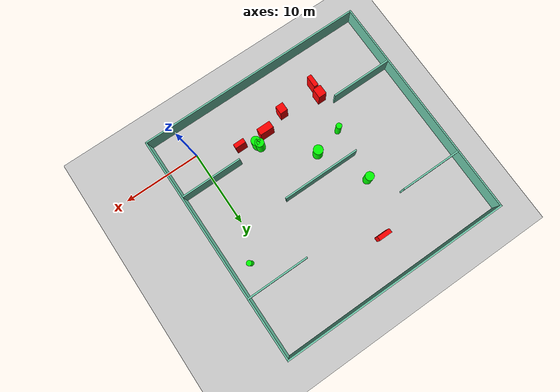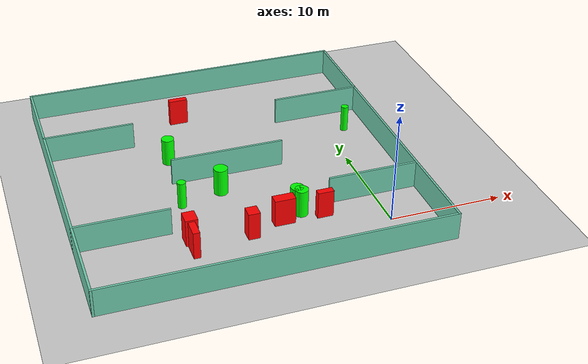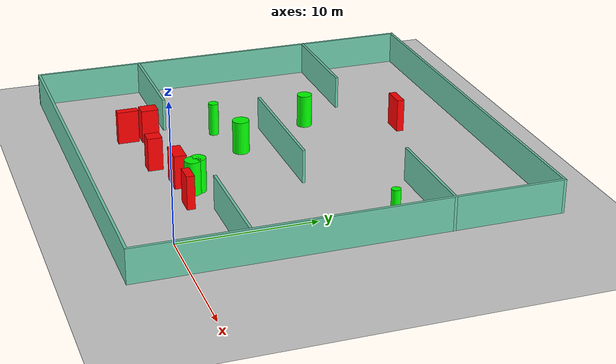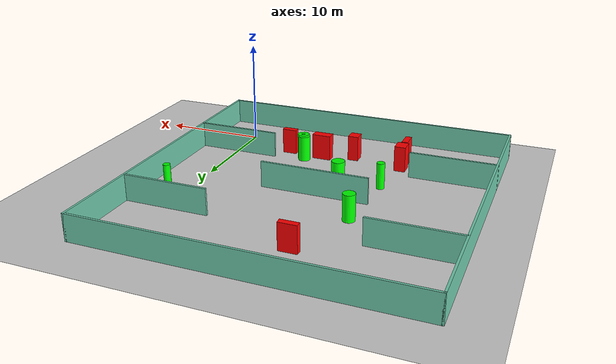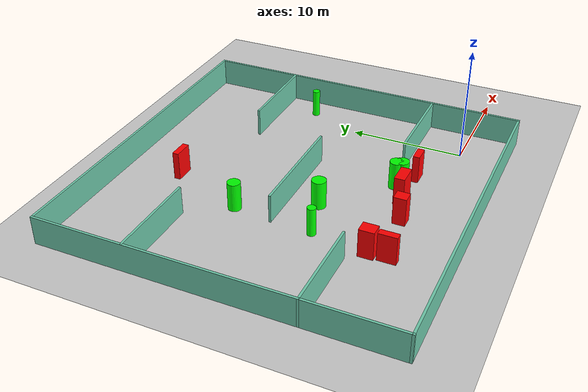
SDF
<sdf version="1.7">
 <world name="default">
  <light name="sun" type="directional">
   <pose>0 0 10 0 -0 0</pose>
   <diffuse>0.8 0.8 0.8 1</diffuse>
   <specular>0.2 0.2 0.2 1</specular>
   <attenuation>
    <range>1000</range>
    <constant>0.9</constant>
    <linear>0.01</linear>
    <quadratic>0.001</quadratic>
   </attenuation>
   <direction>-0.5 0.1 -0.9</direction>
   <spot><inner_angle>0</inner_angle><outer_angle>0</outer_angle><falloff>0</falloff></spot>
  </light>
  <model name="ground_plane">
   <static>1</static>
   <link name="link">
    <collision name="collision">
     <geometry><plane><normal>0 0 1</normal><size>100 100</size></plane></geometry>
     <surface>
      <contact><collide_bitmask>65535</collide_bitmask></contact>
      <friction><ode><mu>100</mu><mu2>50</mu2></ode></friction>
     </surface>
    </collision>
    <visual name="visual">
     <cast_shadows>0</cast_shadows>
     <geometry><plane><normal>0 0 1</normal><size>100 100</size></plane></geometry>
     <material>
      <script><uri>file://media/materials/scripts/gazebo.material</uri><name>Gazebo/Grey</name></script>
     </material>
    </visual>
   </link>
  </model>
  <gravity>0 0 -9.8</gravity>
  <magnetic_field>6e-06 2.3e-05 -4.2e-05</magnetic_field>
  <atmosphere type="adiabatic"/>
  <physics type="ode">
   <max_step_size>0.001</max_step_size>
   <real_time_factor>1</real_time_factor>
   <real_time_update_rate>1000</real_time_update_rate>
  </physics>
  <scene><ambient>0.4 0.4 0.4 1</ambient><background>0.7 0.7 0.7 1</background><shadows>1</shadows></scene>
  <spherical_coordinates>
   <surface_model>EARTH_WGS84</surface_model>
   <latitude_deg>0</latitude_deg>
   <longitude_deg>0</longitude_deg>
   <elevation>0</elevation>
   <heading_deg>0</heading_deg>
  </spherical_coordinates>
  <model name="my_base_walls">
   <link name="Wall_10">
    <collision name="Wall_10_Collision">
     <geometry><box><size>8.2 0.2 2.5</size></box></geometry>
     <pose>0 0 1.25 0 -0 0</pose>
    </collision>
    <visual name="Wall_10_Visual">
     <pose>0 0 1.25 0 -0 0</pose>
     <geometry><box><size>8.2 0.2 2.5</size></box></geometry>
     <material>
      <script><uri>file://media/materials/scripts/gazebo.material</uri><name>Gazebo/Grey</name></script>
      <ambient>0.435294 0.796078 0.67451 1</ambient>
     </material>
     <meta><layer>0</layer></meta>
    </visual>
    <pose>-11 -7 0 0 -0 0</pose>
   </link>
   <link name="Wall_12">
    <collision name="Wall_12_Collision">
     <geometry><box><size>8.2 0.2 2.5</size></box></geometry>
     <pose>0 0 1.25 0 -0 0</pose>
    </collision>
    <visual name="Wall_12_Visual">
     <pose>0 0 1.25 0 -0 0</pose>
     <geometry><box><size>8.2 0.2 2.5</size></box></geometry>
     <material>
      <script><uri>file://media/materials/scripts/gazebo.material</uri><name>Gazebo/Grey</name></script>
      <ambient>0.435294 0.796078 0.67451 1</ambient>
     </material>
     <meta><layer>0</layer></meta>
    </visual>
    <pose>-11 7 0 0 -0 0</pose>
   </link>
   <link name="Wall_14">
    <collision name="Wall_14_Collision">
     <geometry><box><size>8.2 0.2 2.5</size></box></geometry>
     <pose>0 0 1.25 0 -0 0</pose>
    </collision>
    <visual name="Wall_14_Visual">
     <pose>0 0 1.25 0 -0 0</pose>
     <geometry><box><size>8.2 0.2 2.5</size></box></geometry>
     <material>
      <script><uri>file://media/materials/scripts/gazebo.material</uri><name>Gazebo/Grey</name></script>
      <ambient>0.435294 0.796078 0.67451 1</ambient>
     </material>
     <meta><layer>0</layer></meta>
    </visual>
    <pose>11 7 0 0 -0 3.14159</pose>
   </link>
   <link name="Wall_16">
    <collision name="Wall_16_Collision">
     <geometry><box><size>10.2 0.2 2.5</size></box></geometry>
     <pose>0 0 1.25 0 -0 0</pose>
    </collision>
    <visual name="Wall_16_Visual">
     <pose>0 0 1.25 0 -0 0</pose>
     <geometry><box><size>10.2 0.2 2.5</size></box></geometry>
     <material>
      <script><uri>file://media/materials/scripts/gazebo.material</uri><name>Gazebo/Grey</name></script>
      <ambient>0.435294 0.796078 0.67451 1</ambient>
     </material>
     <meta><layer>0</layer></meta>
    </visual>
    <pose>0 0 0 0 -0 3.14159</pose>
   </link>
   <link name="Wall_2">
    <collision name="Wall_2_Collision">
     <geometry><box><size>30.2 0.2 2.5</size></box></geometry>
     <pose>0 0 1.25 0 -0 0</pose>
    </collision>
    <visual name="Wall_2_Visual">
     <pose>0 0 1.25 0 -0 0</pose>
     <geometry><box><size>30.2 0.2 2.5</size></box></geometry>
     <material>
      <script><uri>file://media/materials/scripts/gazebo.material</uri><name>Gazebo/Grey</name></script>
      <ambient>0.435294 0.796078 0.67451 1</ambient>
     </material>
     <meta><layer>0</layer></meta>
    </visual>
    <pose>0 -15 0 0 -0 3.14159</pose>
   </link>
   <link name="Wall_3">
    <collision name="Wall_3_Collision">
     <geometry><box><size>30.2 0.2 2.5</size></box></geometry>
     <pose>0 0 1.25 0 -0 0</pose>
    </collision>
    <visual name="Wall_3_Visual">
     <pose>0 0 1.25 0 -0 0</pose>
     <geometry><box><size>30.2 0.2 2.5</size></box></geometry>
     <material>
      <script><uri>file://media/materials/scripts/gazebo.material</uri><name>Gazebo/Grey</name></script>
      <ambient>0.435294 0.796078 0.67451 1</ambient>
     </material>
     <meta><layer>0</layer></meta>
    </visual>
    <pose>-15 0 0 0 -0 1.5708</pose>
   </link>
   <link name="Wall_4">
    <collision name="Wall_4_Collision">
     <geometry><box><size>30.2 0.2 2.5</size></box></geometry>
     <pose>0 0 1.25 0 -0 0</pose>
    </collision>
    <visual name="Wall_4_Visual">
     <pose>0 0 1.25 0 -0 0</pose>
     <geometry><box><size>30.2 0.2 2.5</size></box></geometry>
     <material>
      <script><uri>file://media/materials/scripts/gazebo.material</uri><name>Gazebo/Grey</name></script>
      <ambient>0.435294 0.796078 0.67451 1</ambient>
     </material>
     <meta><layer>0</layer></meta>
    </visual>
    <pose>0 15 0 0 -0 0</pose>
   </link>
   <link name="Wall_6">
    <collision name="Wall_6_Collision">
     <geometry><box><size>30.2 0.2 2.5</size></box></geometry>
     <pose>0 0 1.25 0 -0 0</pose>
    </collision>
    <visual name="Wall_6_Visual">
     <pose>0 0 1.25 0 -0 0</pose>
     <geometry><box><size>30.2 0.2 2.5</size></box></geometry>
     <material>
      <script><uri>file://media/materials/scripts/gazebo.material</uri><name>Gazebo/Grey</name></script>
      <ambient>0.435294 0.796078 0.67451 1</ambient>
     </material>
     <meta><layer>0</layer></meta>
    </visual>
    <pose>15 0 0 0 -0 1.5708</pose>
   </link>
   <link name="Wall_8">
    <collision name="Wall_8_Collision">
     <geometry><box><size>8.2 0.2 2.5</size></box></geometry>
     <pose>0 0 1.25 0 -0 0</pose>
    </collision>
    <visual name="Wall_8_Visual">
     <pose>0 0 1.25 0 -0 0</pose>
     <geometry><box><size>8.2 0.2 2.5</size></box></geometry>
     <material>
      <script><uri>file://media/materials/scripts/gazebo.material</uri><name>Gazebo/Grey</name></script>
      <ambient>0.435294 0.796078 0.67451 1</ambient>
     </material>
     <meta><layer>0</layer></meta>
    </visual>
    <pose>11 -7 0 0 -0 3.14159</pose>
   </link>
   <static>1</static>
   <pose>-11 11 0 0 -0 0</pose>
  </model>
  <model name="cylinder1">
   <static>1</static>
   <link name="link">
    <inertial>
     <mass>1</mass>
     <inertia><ixx>0.5</ixx><ixy>0</ixy><ixz>0</ixz><iyy>0.5</iyy><iyz>0</iyz><izz>1</izz></inertia>
    </inertial>
    <collision name="collision">
     <geometry><cylinder><radius>0.5618913350897977</radius><length>2.5</length></cylinder></geometry>
    </collision>
    <visual name="visual">
     <geometry><cylinder><radius>0.5618913350897977</radius><length>2.5</length></cylinder></geometry>
     <material>
      <ambient>0 1 0 1</ambient>
      <diffuse>0 1 0 1</diffuse>
      <specular>0.1 0.1 0.1 1</specular>
      <emissive>0 0 0 0</emissive>
     </material>
    </visual>
   </link>
   <pose>-15.523802783339935 14.450407202850233 1.25 0 0 0</pose>
  </model>
  <model name="cylinder2">
   <static>1</static>
   <link name="link">
    <inertial>
     <mass>1</mass>
     <inertia><ixx>0.5</ixx><ixy>0</ixy><ixz>0</ixz><iyy>0.5</iyy><iyz>0</iyz><izz>1</izz></inertia>
    </inertial>
    <collision name="collision">
     <geometry><cylinder><radius>0.3737565584925042</radius><length>2.5</length></cylinder></geometry>
    </collision>
    <visual name="visual">
     <geometry><cylinder><radius>0.3737565584925042</radius><length>2.5</length></cylinder></geometry>
     <material>
      <ambient>0 1 0 1</ambient>
      <diffuse>0 1 0 1</diffuse>
      <specular>0.1 0.1 0.1 1</specular>
      <emissive>0 0 0 0</emissive>
     </material>
    </visual>
   </link>
   <pose>-16.124828531724148 7.3916344864320855 1.25 0 0 0</pose>
  </model>
  <model name="cylinder3">
   <static>1</static>
   <link name="link">
    <inertial>
     <mass>1</mass>
     <inertia><ixx>0.5</ixx><ixy>0</ixy><ixz>0</ixz><iyy>0.5</iyy><iyz>0</iyz><izz>1</izz></inertia>
    </inertial>
    <collision name="collision">
     <geometry><cylinder><radius>0.6187852616201304</radius><length>2.5</length></cylinder></geometry>
    </collision>
    <visual name="visual">
     <geometry><cylinder><radius>0.6187852616201304</radius><length>2.5</length></cylinder></geometry>
     <material>
      <ambient>0 1 0 1</ambient>
      <diffuse>0 1 0 1</diffuse>
      <specular>0.1 0.1 0.1 1</specular>
      <emissive>0 0 0 0</emissive>
     </material>
    </visual>
   </link>
   <pose>-12.384417676748345 8.39195913711356 1.25 0 0 0</pose>
  </model>
  <model name="cylinder4">
   <static>1</static>
   <link name="link">
    <inertial>
     <mass>1</mass>
     <inertia><ixx>0.5</ixx><ixy>0</ixy><ixz>0</ixz><iyy>0.5</iyy><iyz>0</iyz><izz>1</izz></inertia>
    </inertial>
    <collision name="collision">
     <geometry><cylinder><radius>0.32935637654702876</radius><length>2.5</length></cylinder></geometry>
    </collision>
    <visual name="visual">
     <geometry><cylinder><radius>0.32935637654702876</radius><length>2.5</length></cylinder></geometry>
     <material>
      <ambient>0 1 0 1</ambient>
      <diffuse>0 1 0 1</diffuse>
      <specular>0.1 0.1 0.1 1</specular>
      <emissive>0 0 0 0</emissive>
     </material>
    </visual>
   </link>
   <pose>1.7088492208431525 14.762463170965798 1.25 0 0 0</pose>
  </model>
  <model name="cylinder5">
   <static>1</static>
   <link name="link">
    <inertial>
     <mass>1</mass>
     <inertia><ixx>0.5</ixx><ixy>0</ixy><ixz>0</ixz><iyy>0.5</iyy><iyz>0</iyz><izz>1</izz></inertia>
    </inertial>
    <collision name="collision">
     <geometry><cylinder><radius>0.5735336481894572</radius><length>2.5</length></cylinder></geometry>
    </collision>
    <visual name="visual">
     <geometry><cylinder><radius>0.5735336481894572</radius><length>2.5</length></cylinder></geometry>
     <material>
      <ambient>0 1 0 1</ambient>
      <diffuse>0 1 0 1</diffuse>
      <specular>0.1 0.1 0.1 1</specular>
      <emissive>0 0 0 0</emissive>
     </material>
    </visual>
   </link>
   <pose>-7.123082648859942 3.6589254248521987 1.25 0 0 0</pose>
  </model>
  <model name="cylinder6">
   <static>1</static>
   <link name="link">
    <inertial>
     <mass>1</mass>
     <inertia><ixx>0.5</ixx><ixy>0</ixy><ixz>0</ixz><iyy>0.5</iyy><iyz>0</iyz><izz>1</izz></inertia>
    </inertial>
    <collision name="collision">
     <geometry><cylinder><radius>0.5866700640767404</radius><length>2.5</length></cylinder></geometry>
    </collision>
    <visual name="visual">
     <geometry><cylinder><radius>0.5866700640767404</radius><length>2.5</length></cylinder></geometry>
     <material>
      <ambient>0 1 0 1</ambient>
      <diffuse>0 1 0 1</diffuse>
      <specular>0.1 0.1 0.1 1</specular>
      <emissive>0 0 0 0</emissive>
     </material>
    </visual>
   </link>
   <pose>-6.881140571310608 3.2242309954081687 1.25 0 0 0</pose>
  </model>
  <model name="box1">
   <static>1</static>
   <link name="link">
    <inertial>
     <mass>1</mass>
     <inertia><ixx>0.083</ixx><ixy>0</ixy><ixz>0</ixz><iyy>0.083</iyy><iyz>0</iyz><izz>0.083</izz></inertia>
    </inertial>
    <collision name="collision">
     <geometry><box><size>1.070183200927354 1.2850640312606927 2.5</size></box></geometry>
    </collision>
    <visual name="visual">
     <geometry><box><size>1.070183200927354 1.2850640312606927 2.5</size></box></geometry>
     <material>
      <ambient>1 0 0 1</ambient>
      <diffuse>1 0 0 1</diffuse>
      <specular>0.1 0.1 0.1 1</specular>
      <emissive>0 0 0 0</emissive>
     </material>
    </visual>
    <sensor name="my_contact" type="contact">
     <contact><collision>box_collision</collision><topic>__default_topic__</topic></contact>
    </sensor>
   </link>
   <pose>-16.731379387057316 2.5093934770469675 1.25 0 0 0</pose>
  </model>
  <model name="box2">
   <static>1</static>
   <link name="link">
    <inertial>
     <mass>1</mass>
     <inertia><ixx>0.083</ixx><ixy>0</ixy><ixz>0</ixz><iyy>0.083</iyy><iyz>0</iyz><izz>0.083</izz></inertia>
    </inertial>
    <collision name="collision">
     <geometry><box><size>1.0134435378261109 1.092198064610871 2.5</size></box></geometry>
    </collision>
    <visual name="visual">
     <geometry><box><size>1.0134435378261109 1.092198064610871 2.5</size></box></geometry>
     <material>
      <ambient>1 0 0 1</ambient>
      <diffuse>1 0 0 1</diffuse>
      <specular>0.1 0.1 0.1 1</specular>
      <emissive>0 0 0 0</emissive>
     </material>
    </visual>
    <sensor name="my_contact" type="contact">
     <contact><collision>box_collision</collision><topic>__default_topic__</topic></contact>
    </sensor>
   </link>
   <pose>-11.702239548746991 1.6373335910646363 1.25 0 0 0</pose>
  </model>
  <model name="box3">
   <static>1</static>
   <link name="link">
    <inertial>
     <mass>1</mass>
     <inertia><ixx>0.083</ixx><ixy>0</ixy><ixz>0</ixz><iyy>0.083</iyy><iyz>0</iyz><izz>0.083</izz></inertia>
    </inertial>
    <collision name="collision">
     <geometry><box><size>1.7022978801532607 0.5498670839894271 2.5</size></box></geometry>
    </collision>
    <visual name="visual">
     <geometry><box><size>1.7022978801532607 0.5498670839894271 2.5</size></box></geometry>
     <material>
      <ambient>1 0 0 1</ambient>
      <diffuse>1 0 0 1</diffuse>
      <specular>0.1 0.1 0.1 1</specular>
      <emissive>0 0 0 0</emissive>
     </material>
    </visual>
    <sensor name="my_contact" type="contact">
     <contact><collision>box_collision</collision><topic>__default_topic__</topic></contact>
    </sensor>
   </link>
   <pose>-12.89944707610185 20.95973390964893 1.25 0 0 0</pose>
  </model>
  <model name="box4">
   <static>1</static>
   <link name="link">
    <inertial>
     <mass>1</mass>
     <inertia><ixx>0.083</ixx><ixy>0</ixy><ixz>0</ixz><iyy>0.083</iyy><iyz>0</iyz><izz>0.083</izz></inertia>
    </inertial>
    <collision name="collision">
     <geometry><box><size>1.4054796849339648 0.5755342708479185 2.5</size></box></geometry>
    </collision>
    <visual name="visual">
     <geometry><box><size>1.4054796849339648 0.5755342708479185 2.5</size></box></geometry>
     <material>
      <ambient>1 0 0 1</ambient>
      <diffuse>1 0 0 1</diffuse>
      <specular>0.1 0.1 0.1 1</specular>
      <emissive>0 0 0 0</emissive>
     </material>
    </visual>
    <sensor name="my_contact" type="contact">
     <contact><collision>box_collision</collision><topic>__default_topic__</topic></contact>
    </sensor>
   </link>
   <pose>-5.110312949374524 2.3927314225165537 1.25 0 0 0</pose>
  </model>
  <model name="box5">
   <static>1</static>
   <link name="link">
    <inertial>
     <mass>1</mass>
     <inertia><ixx>0.083</ixx><ixy>0</ixy><ixz>0</ixz><iyy>0.083</iyy><iyz>0</iyz><izz>0.083</izz></inertia>
    </inertial>
    <collision name="collision">
     <geometry><box><size>0.5897456406505942 1.5716377605989333 2.5</size></box></geometry>
    </collision>
    <visual name="visual">
     <geometry><box><size>0.5897456406505942 1.5716377605989333 2.5</size></box></geometry>
     <material>
      <ambient>1 0 0 1</ambient>
      <diffuse>1 0 0 1</diffuse>
      <specular>0.1 0.1 0.1 1</specular>
      <emissive>0 0 0 0</emissive>
     </material>
    </visual>
    <sensor name="my_contact" type="contact">
     <contact><collision>box_collision</collision><topic>__default_topic__</topic></contact>
    </sensor>
   </link>
   <pose>-16.809963755116968 0.9074985075902449 1.25 0 0 0</pose>
  </model>
  <model name="box6">
   <static>1</static>
   <link name="link">
    <inertial>
     <mass>1</mass>
     <inertia><ixx>0.083</ixx><ixy>0</ixy><ixz>0</ixz><iyy>0.083</iyy><iyz>0</iyz><izz>0.083</izz></inertia>
    </inertial>
    <collision name="collision">
     <geometry><box><size>1.8223383357565563 0.8971913319869469 2.5</size></box></geometry>
    </collision>
    <visual name="visual">
     <geometry><box><size>1.8223383357565563 0.8971913319869469 2.5</size></box></geometry>
     <material>
      <ambient>1 0 0 1</ambient>
      <diffuse>1 0 0 1</diffuse>
      <specular>0.1 0.1 0.1 1</specular>
      <emissive>0 0 0 0</emissive>
     </material>
    </visual>
    <sensor name="my_contact" type="contact">
     <contact><collision>box_collision</collision><topic>__default_topic__</topic></contact>
    </sensor>
   </link>
   <pose>-8.66956980934258 2.579311797925431 1.25 0 0 0</pose>
  </model>
 </world>
</sdf>
